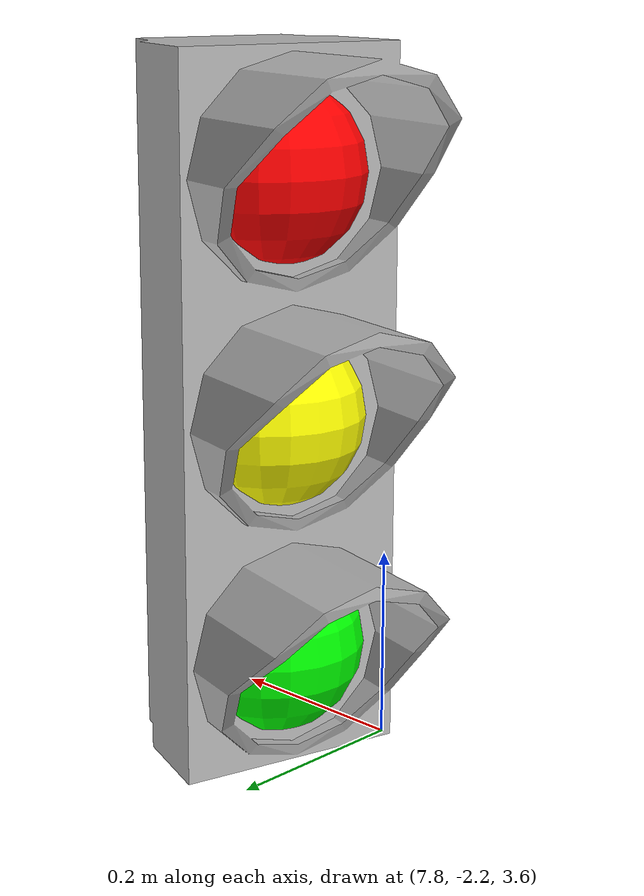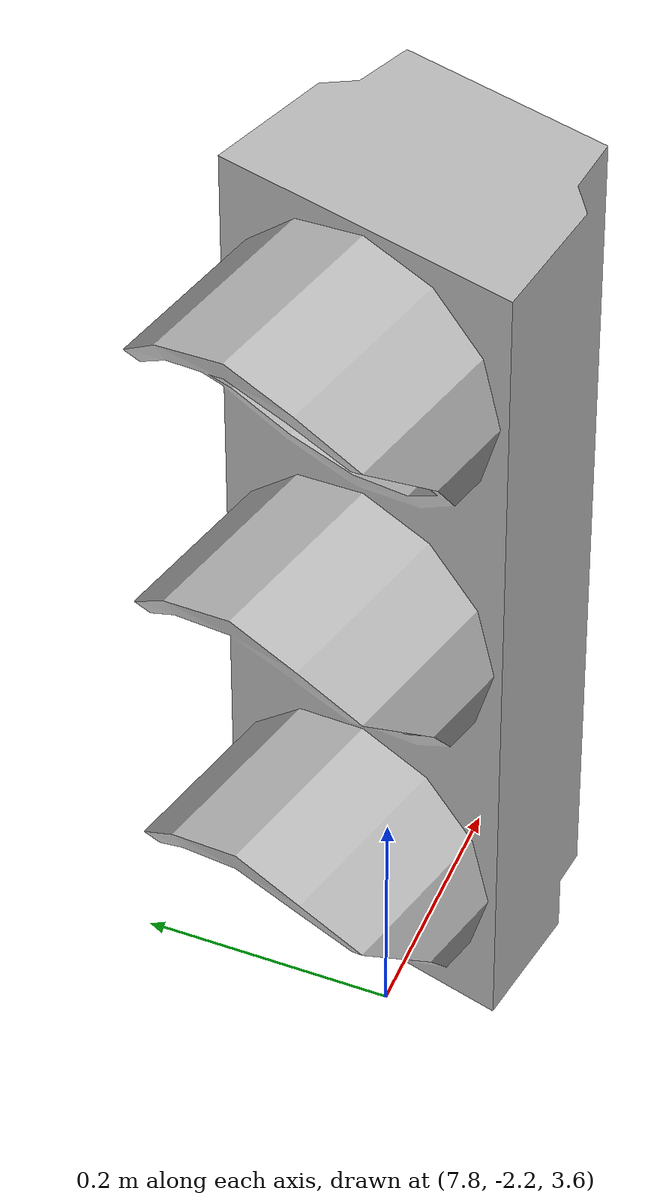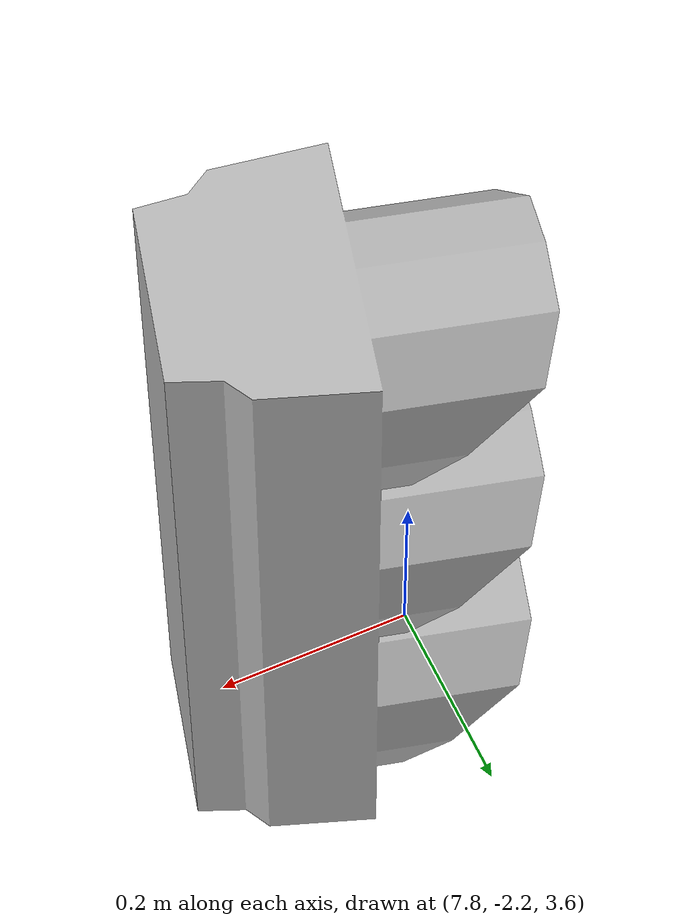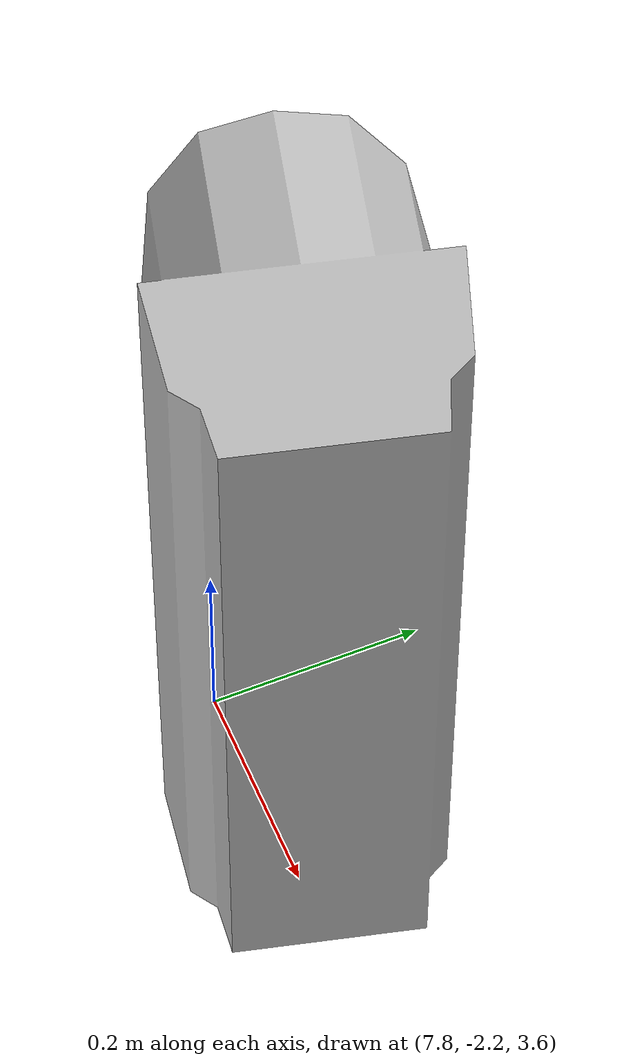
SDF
<sdf version="1.7">
 <world name="yolo_world">
  <model name="ground_plane">
   <static>1</static>
   <link name="link">
    <collision name="collision">
     <geometry><plane><normal>0 0 1</normal><size>100 100</size></plane></geometry>
     <surface><friction><ode><mu>100</mu><mu2>50</mu2></ode></friction></surface>
    </collision>
    <visual name="visual">
     <cast_shadows>0</cast_shadows>
     <geometry><plane><normal>0 0 1</normal><size>100 100</size></plane></geometry>
     <material>
      <script><uri>file://media/materials/scripts/gazebo.material</uri><name>Gazebo/Grey</name></script>
     </material>
    </visual>
   </link>
  </model>
  <light name="sun" type="directional">
   <pose>0 0 10 0 -0 0</pose>
   <diffuse>0.8 0.8 0.8 1</diffuse>
   <specular>0.2 0.2 0.2 1</specular>
   <attenuation>
    <range>1000</range>
    <constant>0.9</constant>
    <linear>0.01</linear>
    <quadratic>0.001</quadratic>
   </attenuation>
   <direction>-0.5 0.1 -0.9</direction>
   <spot><inner_angle>0</inner_angle><outer_angle>0</outer_angle><falloff>0</falloff></spot>
  </light>
  <model name="cam">
   <static>1</static>
   <pose>0 0 1.5 0 -0 0</pose>
   <link name="cam_link">
    <inertial><mass>1</mass></inertial>
    <sensor name="camera" type="camera">
     <always_on>1</always_on>
     <update_rate>30</update_rate>
     <visualize>1</visualize>
     <camera>
      <horizontal_fov>1.047</horizontal_fov>
      <image><width>640</width><height>480</height><format>R8G8B8</format></image>
      <clip><near>0.1</near><far>100</far></clip>
     </camera>
     <plugin name="gazebo_ros_camera" filename="libgazebo_ros_camera.so">
      <frame_name>camera_link</frame_name>
      <camera_name>camera</camera_name>
      <image_topic_name>image_raw</image_topic_name>
     </plugin>
    </sensor>
   </link>
  </model>
  <gravity>0 0 -9.8</gravity>
  <magnetic_field>6e-06 2.3e-05 -4.2e-05</magnetic_field>
  <atmosphere type="adiabatic"/>
  <physics type="ode">
   <max_step_size>0.001</max_step_size>
   <real_time_factor>1</real_time_factor>
   <real_time_update_rate>1000</real_time_update_rate>
  </physics>
  <scene><ambient>0.4 0.4 0.4 1</ambient><background>0.7 0.7 0.7 1</background><shadows>1</shadows></scene>
  <audio><device>default</device></audio>
  <spherical_coordinates>
   <surface_model>EARTH_WGS84</surface_model>
   <latitude_deg>0</latitude_deg>
   <longitude_deg>0</longitude_deg>
   <elevation>0</elevation>
   <heading_deg>0</heading_deg>
  </spherical_coordinates>
  <model name="stop_light">
   <static>1</static>
   <pose>8.00488 -2.17877 4.33856 0 0 -1.82299</pose>
   <link name="link">
    <collision name="collision">
     <geometry>
      <mesh><uri>model://stop_light/meshes/stop_light.obj</uri><scale>0.01 0.01 0.01</scale></mesh>
     </geometry>
    </collision>
    <visual name="frame">
     <geometry>
      <mesh><uri>model://stop_light/meshes/stop_light.obj</uri><scale>0.01 0.01 0.01</scale></mesh>
     </geometry>
    </visual>
    <visual name="red">
     <pose>-0.001123 -0.082251 -0.147514 0 -0 0</pose>
     <geometry><sphere><radius>0.1012</radius></sphere></geometry>
     <material>
      <script>
       <uri>model://stop_light/materials/scripts/</uri>
       <uri>model://stop_light/materials/textures/</uri>
       <name>StopLight/Light</name>
      </script>
      <ambient>1 0 0 1</ambient>
      <specular>1 0 0 1</specular>
     </material>
    </visual>
    <visual name="yellow">
     <pose>-0.001123 -0.082251 -0.402 0 -0 0</pose>
     <geometry><sphere><radius>0.1012</radius></sphere></geometry>
     <material>
      <script>
       <uri>model://stop_light/materials/scripts/</uri>
       <uri>model://stop_light/materials/textures/</uri>
       <name>StopLight/Light</name>
      </script>
      <ambient>1 1 0 1</ambient>
      <specular>1 1 0 1</specular>
     </material>
    </visual>
    <visual name="green">
     <pose>-0.001123 -0.082251 -0.655 0 -0 0</pose>
     <geometry><sphere><radius>0.1012</radius></sphere></geometry>
     <material>
      <script>
       <uri>model://stop_light/materials/scripts/</uri>
       <uri>model://stop_light/materials/textures/</uri>
       <name>StopLight/Light</name>
      </script>
      <ambient>0 1 0 1</ambient>
      <specular>0 1 0 1</specular>
     </material>
    </visual>
   </link>
  </model>
 </world>
</sdf>
